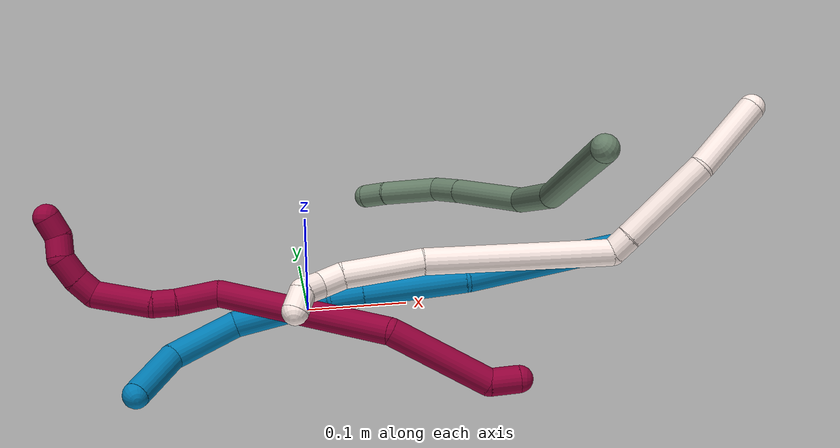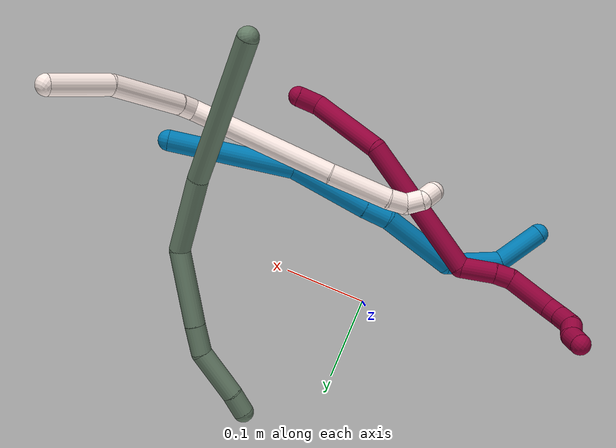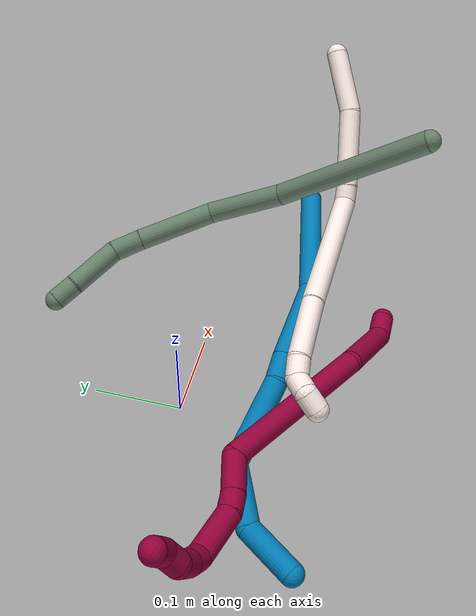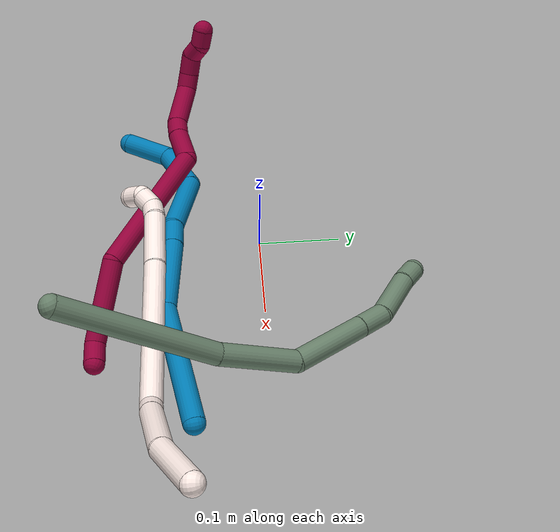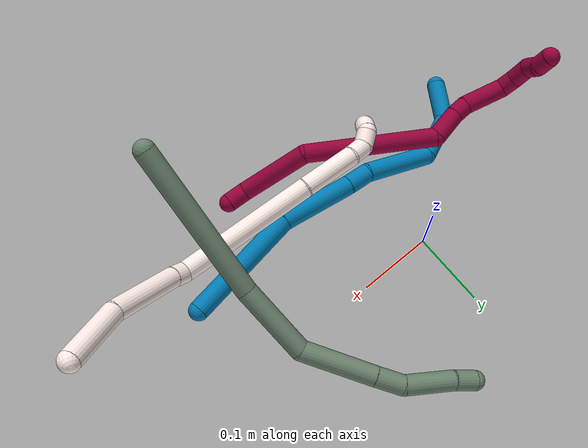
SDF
<sdf version="1.7">
 <world name="default">
  <model name="8">
   <static>0</static>
   <link name="8">
    <collision name="collision-cylinder-e_1_1_4">
     <pose>-0.002606 -0.002024 -0.013104 2.98833 -0.194032 -1.80567</pose>
     <geometry><cylinder><radius>0.0125</radius><length>0.027026</length></cylinder></geometry>
     <surface>
      <friction><ode><mu>1.16</mu><mu2>1.16</mu2><slip1>0</slip1><slip2>0</slip2></ode></friction>
      <contact><ode><kp>1e+06</kp><kd>1</kd><max_vel>0</max_vel><min_depth>0.001</min_depth></ode></contact>
     </surface>
    </collision>
    <visual name="visual-cylinder-e_1_1_4">
     <pose>-0.002606 -0.002024 -0.013104 2.98833 -0.194032 -1.80567</pose>
     <geometry><cylinder><radius>0.0125</radius><length>0.027026</length></cylinder></geometry>
     <material><ambient>0.584314 0 0.227451 1</ambient></material>
    </visual>
    <collision name="collision-cylinder-e_2_4_5">
     <pose>-0.01887 0.016145 -0.069137 -2.70192 -0.280329 1.12641</pose>
     <geometry><cylinder><radius>0.0125</radius><length>0.098736</length></cylinder></geometry>
     <surface>
      <friction><ode><mu>1.16</mu><mu2>1.16</mu2><slip1>0</slip1><slip2>0</slip2></ode></friction>
      <contact><ode><kp>1e+06</kp><kd>1</kd><max_vel>0</max_vel><min_depth>0.001</min_depth></ode></contact>
     </surface>
    </collision>
    <visual name="visual-cylinder-e_2_4_5">
     <pose>-0.01887 0.016145 -0.069137 -2.70192 -0.280329 1.12641</pose>
     <geometry><cylinder><radius>0.0125</radius><length>0.098736</length></cylinder></geometry>
     <material><ambient>0.584314 0 0.227451 1</ambient></material>
    </visual>
    <collision name="collision-cylinder-e_3_5_6">
     <pose>-0.015266 0.055372 -0.194659 -2.91509 0.200917 -1.45032</pose>
     <geometry><cylinder><radius>0.0125</radius><length>0.172996</length></cylinder></geometry>
     <surface>
      <friction><ode><mu>1.16</mu><mu2>1.16</mu2><slip1>0</slip1><slip2>0</slip2></ode></friction>
      <contact><ode><kp>1e+06</kp><kd>1</kd><max_vel>0</max_vel><min_depth>0.001</min_depth></ode></contact>
     </surface>
    </collision>
    <visual name="visual-cylinder-e_3_5_6">
     <pose>-0.015266 0.055372 -0.194659 -2.91509 0.200917 -1.45032</pose>
     <geometry><cylinder><radius>0.0125</radius><length>0.172996</length></cylinder></geometry>
     <material><ambient>0.584314 0 0.227451 1</ambient></material>
    </visual>
    <collision name="collision-cylinder-e_4_6_7">
     <pose>-0.005836 0.068712 -0.295508 2.83929 -0.388707 -1.82449</pose>
     <geometry><cylinder><radius>0.0125</radius><length>0.041329</length></cylinder></geometry>
     <surface>
      <friction><ode><mu>1.16</mu><mu2>1.16</mu2><slip1>0</slip1><slip2>0</slip2></ode></friction>
      <contact><ode><kp>1e+06</kp><kd>1</kd><max_vel>0</max_vel><min_depth>0.001</min_depth></ode></contact>
     </surface>
    </collision>
    <visual name="visual-cylinder-e_4_6_7">
     <pose>-0.005836 0.068712 -0.295508 2.83929 -0.388707 -1.82449</pose>
     <geometry><cylinder><radius>0.0125</radius><length>0.041329</length></cylinder></geometry>
     <material><ambient>0.584314 0 0.227451 1</ambient></material>
    </visual>
    <collision name="collision-cylinder-e_5_7_8">
     <pose>-0.016621 0.061529 -0.323551 2.99046 -0.289879 -2.18461</pose>
     <geometry><cylinder><radius>0.0125</radius><length>0.020662</length></cylinder></geometry>
     <surface>
      <friction><ode><mu>1.16</mu><mu2>1.16</mu2><slip1>0</slip1><slip2>0</slip2></ode></friction>
      <contact><ode><kp>1e+06</kp><kd>1</kd><max_vel>0</max_vel><min_depth>0.001</min_depth></ode></contact>
     </surface>
    </collision>
    <visual name="visual-cylinder-e_5_7_8">
     <pose>-0.016621 0.061529 -0.323551 2.99046 -0.289879 -2.18461</pose>
     <geometry><cylinder><radius>0.0125</radius><length>0.020662</length></cylinder></geometry>
     <material><ambient>0.584314 0 0.227451 1</ambient></material>
    </visual>
    <collision name="collision-cylinder-e_6_8_9">
     <pose>-0.022302 0.06396 -0.360054 -2.99584 -0.100725 1.20854</pose>
     <geometry><cylinder><radius>0.0125</radius><length>0.054279</length></cylinder></geometry>
     <surface>
      <friction><ode><mu>1.16</mu><mu2>1.16</mu2><slip1>0</slip1><slip2>0</slip2></ode></friction>
      <contact><ode><kp>1e+06</kp><kd>1</kd><max_vel>0</max_vel><min_depth>0.001</min_depth></ode></contact>
     </surface>
    </collision>
    <visual name="visual-cylinder-e_6_8_9">
     <pose>-0.022302 0.06396 -0.360054 -2.99584 -0.100725 1.20854</pose>
     <geometry><cylinder><radius>0.0125</radius><length>0.054279</length></cylinder></geometry>
     <material><ambient>0.584314 0 0.227451 1</ambient></material>
    </visual>
    <collision name="collision-cylinder-e_7_9_10">
     <pose>-0.029163 0.073879 -0.393966 -2.44689 -0.415332 1.05416</pose>
     <geometry><cylinder><radius>0.0125</radius><length>0.020479</length></cylinder></geometry>
     <surface>
      <friction><ode><mu>1.16</mu><mu2>1.16</mu2><slip1>0</slip1><slip2>0</slip2></ode></friction>
      <contact><ode><kp>1e+06</kp><kd>1</kd><max_vel>0</max_vel><min_depth>0.001</min_depth></ode></contact>
     </surface>
    </collision>
    <visual name="visual-cylinder-e_7_9_10">
     <pose>-0.029163 0.073879 -0.393966 -2.44689 -0.415332 1.05416</pose>
     <geometry><cylinder><radius>0.0125</radius><length>0.020479</length></cylinder></geometry>
     <material><ambient>0.584314 0 0.227451 1</ambient></material>
    </visual>
    <collision name="collision-cylinder-e_8_10_11">
     <pose>-0.038824 0.088526 -0.407378 -2.19377 -0.478851 0.888427</pose>
     <geometry><cylinder><radius>0.0125</radius><length>0.024</length></cylinder></geometry>
     <surface>
      <friction><ode><mu>1.16</mu><mu2>1.16</mu2><slip1>0</slip1><slip2>0</slip2></ode></friction>
      <contact><ode><kp>1e+06</kp><kd>1</kd><max_vel>0</max_vel><min_depth>0.001</min_depth></ode></contact>
     </surface>
    </collision>
    <visual name="visual-cylinder-e_8_10_11">
     <pose>-0.038824 0.088526 -0.407378 -2.19377 -0.478851 0.888427</pose>
     <geometry><cylinder><radius>0.0125</radius><length>0.024</length></cylinder></geometry>
     <material><ambient>0.584314 0 0.227451 1</ambient></material>
    </visual>
    <collision name="collision-cylinder-e_9_11_12">
     <pose>-0.044987 0.107203 -0.415182 -1.72803 -0.062421 0.073088</pose>
     <geometry><cylinder><radius>0.0125</radius><length>0.020343</length></cylinder></geometry>
     <surface>
      <friction><ode><mu>1.16</mu><mu2>1.16</mu2><slip1>0</slip1><slip2>0</slip2></ode></friction>
      <contact><ode><kp>1e+06</kp><kd>1</kd><max_vel>0</max_vel><min_depth>0.001</min_depth></ode></contact>
     </surface>
    </collision>
    <visual name="visual-cylinder-e_9_11_12">
     <pose>-0.044987 0.107203 -0.415182 -1.72803 -0.062421 0.073088</pose>
     <geometry><cylinder><radius>0.0125</radius><length>0.020343</length></cylinder></geometry>
     <material><ambient>0.584314 0 0.227451 1</ambient></material>
    </visual>
    <collision name="collision-cylinder-e_10_12_2">
     <pose>-0.050067 0.125021 -0.421358 -2.10286 -0.45695 0.772585</pose>
     <geometry><cylinder><radius>0.0125</radius><length>0.02015</length></cylinder></geometry>
     <surface>
      <friction><ode><mu>1.16</mu><mu2>1.16</mu2><slip1>0</slip1><slip2>0</slip2></ode></friction>
      <contact><ode><kp>1e+06</kp><kd>1</kd><max_vel>0</max_vel><min_depth>0.001</min_depth></ode></contact>
     </surface>
    </collision>
    <visual name="visual-cylinder-e_10_12_2">
     <pose>-0.050067 0.125021 -0.421358 -2.10286 -0.45695 0.772585</pose>
     <geometry><cylinder><radius>0.0125</radius><length>0.02015</length></cylinder></geometry>
     <material><ambient>0.584314 0 0.227451 1</ambient></material>
    </visual>
    <collision name="collision-sphere-2">
     <pose>-0.054512 0.132812 -0.425945 0 -0 0</pose>
     <geometry><sphere><radius>0.0125</radius></sphere></geometry>
     <surface>
      <friction><ode><mu>1.16</mu><mu2>1.16</mu2><slip1>0</slip1><slip2>0</slip2></ode></friction>
      <contact><ode><kp>1e+06</kp><kd>1</kd><max_vel>0</max_vel><min_depth>0.001</min_depth></ode></contact>
     </surface>
    </collision>
    <visual name="visual-sphere-2">
     <pose>-0.054512 0.132812 -0.425945 0 -0 0</pose>
     <geometry><sphere><radius>0.0125</radius></sphere></geometry>
     <material><ambient>0.584314 0 0.227451 1</ambient></material>
    </visual>
    <collision name="collision-sphere-12">
     <pose>-0.045622 0.117229 -0.416771 0 -0 0</pose>
     <geometry><sphere><radius>0.0125</radius></sphere></geometry>
     <surface>
      <friction><ode><mu>1.16</mu><mu2>1.16</mu2><slip1>0</slip1><slip2>0</slip2></ode></friction>
      <contact><ode><kp>1e+06</kp><kd>1</kd><max_vel>0</max_vel><min_depth>0.001</min_depth></ode></contact>
     </surface>
    </collision>
    <visual name="visual-sphere-12">
     <pose>-0.045622 0.117229 -0.416771 0 -0 0</pose>
     <geometry><sphere><radius>0.0125</radius></sphere></geometry>
     <material><ambient>0.584314 0 0.227451 1</ambient></material>
    </visual>
    <collision name="collision-sphere-11">
     <pose>-0.044353 0.097176 -0.413592 0 -0 0</pose>
     <geometry><sphere><radius>0.0125</radius></sphere></geometry>
     <surface>
      <friction><ode><mu>1.16</mu><mu2>1.16</mu2><slip1>0</slip1><slip2>0</slip2></ode></friction>
      <contact><ode><kp>1e+06</kp><kd>1</kd><max_vel>0</max_vel><min_depth>0.001</min_depth></ode></contact>
     </surface>
    </collision>
    <visual name="visual-sphere-11">
     <pose>-0.044353 0.097176 -0.413592 0 -0 0</pose>
     <geometry><sphere><radius>0.0125</radius></sphere></geometry>
     <material><ambient>0.584314 0 0.227451 1</ambient></material>
    </visual>
    <collision name="collision-sphere-10">
     <pose>-0.033294 0.079876 -0.401164 0 -0 0</pose>
     <geometry><sphere><radius>0.0125</radius></sphere></geometry>
     <surface>
      <friction><ode><mu>1.16</mu><mu2>1.16</mu2><slip1>0</slip1><slip2>0</slip2></ode></friction>
      <contact><ode><kp>1e+06</kp><kd>1</kd><max_vel>0</max_vel><min_depth>0.001</min_depth></ode></contact>
     </surface>
    </collision>
    <visual name="visual-sphere-10">
     <pose>-0.033294 0.079876 -0.401164 0 -0 0</pose>
     <geometry><sphere><radius>0.0125</radius></sphere></geometry>
     <material><ambient>0.584314 0 0.227451 1</ambient></material>
    </visual>
    <collision name="collision-sphere-9">
     <pose>-0.025031 0.067881 -0.386769 0 -0 0</pose>
     <geometry><sphere><radius>0.0125</radius></sphere></geometry>
     <surface>
      <friction><ode><mu>1.16</mu><mu2>1.16</mu2><slip1>0</slip1><slip2>0</slip2></ode></friction>
      <contact><ode><kp>1e+06</kp><kd>1</kd><max_vel>0</max_vel><min_depth>0.001</min_depth></ode></contact>
     </surface>
    </collision>
    <visual name="visual-sphere-9">
     <pose>-0.025031 0.067881 -0.386769 0 -0 0</pose>
     <geometry><sphere><radius>0.0125</radius></sphere></geometry>
     <material><ambient>0.584314 0 0.227451 1</ambient></material>
    </visual>
    <collision name="collision-sphere-4">
     <pose>-0.005211 -0.004048 -0.026208 0 -0 0</pose>
     <geometry><sphere><radius>0.0125</radius></sphere></geometry>
     <surface>
      <friction><ode><mu>1.16</mu><mu2>1.16</mu2><slip1>0</slip1><slip2>0</slip2></ode></friction>
      <contact><ode><kp>1e+06</kp><kd>1</kd><max_vel>0</max_vel><min_depth>0.001</min_depth></ode></contact>
     </surface>
    </collision>
    <visual name="visual-sphere-4">
     <pose>-0.005211 -0.004048 -0.026208 0 -0 0</pose>
     <geometry><sphere><radius>0.0125</radius></sphere></geometry>
     <material><ambient>0.584314 0 0.227451 1</ambient></material>
    </visual>
    <collision name="collision-sphere-1">
     <geometry><sphere><radius>0.0125</radius></sphere></geometry>
     <surface>
      <friction><ode><mu>1.16</mu><mu2>1.16</mu2><slip1>0</slip1><slip2>0</slip2></ode></friction>
      <contact><ode><kp>1e+06</kp><kd>1</kd><max_vel>0</max_vel><min_depth>0.001</min_depth></ode></contact>
     </surface>
    </collision>
    <visual name="visual-sphere-1">
     <geometry><sphere><radius>0.0125</radius></sphere></geometry>
     <material><ambient>0.584314 0 0.227451 1</ambient></material>
    </visual>
    <collision name="collision-sphere-8">
     <pose>-0.019573 0.060038 -0.333338 0 -0 0</pose>
     <geometry><sphere><radius>0.0125</radius></sphere></geometry>
     <surface>
      <friction><ode><mu>1.16</mu><mu2>1.16</mu2><slip1>0</slip1><slip2>0</slip2></ode></friction>
      <contact><ode><kp>1e+06</kp><kd>1</kd><max_vel>0</max_vel><min_depth>0.001</min_depth></ode></contact>
     </surface>
    </collision>
    <visual name="visual-sphere-8">
     <pose>-0.019573 0.060038 -0.333338 0 -0 0</pose>
     <geometry><sphere><radius>0.0125</radius></sphere></geometry>
     <material><ambient>0.584314 0 0.227451 1</ambient></material>
    </visual>
    <collision name="collision-sphere-5">
     <pose>-0.032529 0.036338 -0.112066 0 -0 0</pose>
     <geometry><sphere><radius>0.0125</radius></sphere></geometry>
     <surface>
      <friction><ode><mu>1.16</mu><mu2>1.16</mu2><slip1>0</slip1><slip2>0</slip2></ode></friction>
      <contact><ode><kp>1e+06</kp><kd>1</kd><max_vel>0</max_vel><min_depth>0.001</min_depth></ode></contact>
     </surface>
    </collision>
    <visual name="visual-sphere-5">
     <pose>-0.032529 0.036338 -0.112066 0 -0 0</pose>
     <geometry><sphere><radius>0.0125</radius></sphere></geometry>
     <material><ambient>0.584314 0 0.227451 1</ambient></material>
    </visual>
    <collision name="collision-sphere-6">
     <pose>0.001996 0.074406 -0.277252 0 -0 0</pose>
     <geometry><sphere><radius>0.0125</radius></sphere></geometry>
     <surface>
      <friction><ode><mu>1.16</mu><mu2>1.16</mu2><slip1>0</slip1><slip2>0</slip2></ode></friction>
      <contact><ode><kp>1e+06</kp><kd>1</kd><max_vel>0</max_vel><min_depth>0.001</min_depth></ode></contact>
     </surface>
    </collision>
    <visual name="visual-sphere-6">
     <pose>0.001996 0.074406 -0.277252 0 -0 0</pose>
     <geometry><sphere><radius>0.0125</radius></sphere></geometry>
     <material><ambient>0.584314 0 0.227451 1</ambient></material>
    </visual>
    <collision name="collision-sphere-7">
     <pose>-0.013668 0.063019 -0.313764 0 -0 0</pose>
     <geometry><sphere><radius>0.0125</radius></sphere></geometry>
     <surface>
      <friction><ode><mu>1.16</mu><mu2>1.16</mu2><slip1>0</slip1><slip2>0</slip2></ode></friction>
      <contact><ode><kp>1e+06</kp><kd>1</kd><max_vel>0</max_vel><min_depth>0.001</min_depth></ode></contact>
     </surface>
    </collision>
    <visual name="visual-sphere-7">
     <pose>-0.013668 0.063019 -0.313764 0 -0 0</pose>
     <geometry><sphere><radius>0.0125</radius></sphere></geometry>
     <material><ambient>0.584314 0 0.227451 1</ambient></material>
    </visual>
    <inertial>
     <pose>-0.019645 0.054078 -0.228157 0 -0 0</pose>
     <mass>0.5</mass>
     <inertia>
      <ixx>-0.000257</ixx>
      <ixy>0</ixy>
      <ixz>0</ixz>
      <iyy>-0.000393</iyy>
      <iyz>0</iyz>
      <izz>-0.000225</izz>
     </inertia>
    </inertial>
   </link>
   <pose>0.169976 -0.20142 0.021488 1.5175 0.639215 1.27727</pose>
  </model>
  <model name="9">
   <static>0</static>
   <link name="9">
    <collision name="collision-cylinder-e_1_1_4">
     <pose>0.034766 -0.066396 -0.003242 1.61959 0.481877 0.504991</pose>
     <geometry><cylinder><radius>0.0125</radius><length>0.150035</length></cylinder></geometry>
     <surface>
      <friction><ode><mu>1.16</mu><mu2>1.16</mu2><slip1>0</slip1><slip2>0</slip2></ode></friction>
      <contact><ode><kp>1e+06</kp><kd>1</kd><max_vel>0</max_vel><min_depth>0.001</min_depth></ode></contact>
     </surface>
    </collision>
    <visual name="visual-cylinder-e_1_1_4">
     <pose>0.034766 -0.066396 -0.003242 1.61959 0.481877 0.504991</pose>
     <geometry><cylinder><radius>0.0125</radius><length>0.150035</length></cylinder></geometry>
     <material><ambient>0 0.490196 0.709804 1</ambient></material>
    </visual>
    <collision name="collision-cylinder-e_2_4_5">
     <pose>0.088034 -0.175674 0.004947 1.3103 0.39499 0.305113</pose>
     <geometry><cylinder><radius>0.0125</radius><length>0.096164</length></cylinder></geometry>
     <surface>
      <friction><ode><mu>1.16</mu><mu2>1.16</mu2><slip1>0</slip1><slip2>0</slip2></ode></friction>
      <contact><ode><kp>1e+06</kp><kd>1</kd><max_vel>0</max_vel><min_depth>0.001</min_depth></ode></contact>
     </surface>
    </collision>
    <visual name="visual-cylinder-e_2_4_5">
     <pose>0.088034 -0.175674 0.004947 1.3103 0.39499 0.305113</pose>
     <geometry><cylinder><radius>0.0125</radius><length>0.096164</length></cylinder></geometry>
     <material><ambient>0 0.490196 0.709804 1</ambient></material>
    </visual>
    <collision name="collision-cylinder-e_3_5_6">
     <pose>0.11275 -0.232468 0.019108 1.37695 0.413048 0.341404</pose>
     <geometry><cylinder><radius>0.0125</radius><length>0.030959</length></cylinder></geometry>
     <surface>
      <friction><ode><mu>1.16</mu><mu2>1.16</mu2><slip1>0</slip1><slip2>0</slip2></ode></friction>
      <contact><ode><kp>1e+06</kp><kd>1</kd><max_vel>0</max_vel><min_depth>0.001</min_depth></ode></contact>
     </surface>
    </collision>
    <visual name="visual-cylinder-e_3_5_6">
     <pose>0.11275 -0.232468 0.019108 1.37695 0.413048 0.341404</pose>
     <geometry><cylinder><radius>0.0125</radius><length>0.030959</length></cylinder></geometry>
     <material><ambient>0 0.490196 0.709804 1</ambient></material>
    </visual>
    <collision name="collision-cylinder-e_4_6_7">
     <pose>0.127059 -0.290352 0.038441 1.2098 0.170573 0.118076</pose>
     <geometry><cylinder><radius>0.0125</radius><length>0.095387</length></cylinder></geometry>
     <surface>
      <friction><ode><mu>1.16</mu><mu2>1.16</mu2><slip1>0</slip1><slip2>0</slip2></ode></friction>
      <contact><ode><kp>1e+06</kp><kd>1</kd><max_vel>0</max_vel><min_depth>0.001</min_depth></ode></contact>
     </surface>
    </collision>
    <visual name="visual-cylinder-e_4_6_7">
     <pose>0.127059 -0.290352 0.038441 1.2098 0.170573 0.118076</pose>
     <geometry><cylinder><radius>0.0125</radius><length>0.095387</length></cylinder></geometry>
     <material><ambient>0 0.490196 0.709804 1</ambient></material>
    </visual>
    <collision name="collision-cylinder-e_5_7_8">
     <pose>0.145569 -0.364845 0.045378 1.87744 0.314491 0.426449</pose>
     <geometry><cylinder><radius>0.0125</radius><length>0.067332</length></cylinder></geometry>
     <surface>
      <friction><ode><mu>1.16</mu><mu2>1.16</mu2><slip1>0</slip1><slip2>0</slip2></ode></friction>
      <contact><ode><kp>1e+06</kp><kd>1</kd><max_vel>0</max_vel><min_depth>0.001</min_depth></ode></contact>
     </surface>
    </collision>
    <visual name="visual-cylinder-e_5_7_8">
     <pose>0.145569 -0.364845 0.045378 1.87744 0.314491 0.426449</pose>
     <geometry><cylinder><radius>0.0125</radius><length>0.067332</length></cylinder></geometry>
     <material><ambient>0 0.490196 0.709804 1</ambient></material>
    </visual>
    <collision name="collision-cylinder-e_6_8_2">
     <pose>0.163351 -0.413499 0.012896 2.47011 0.24764 0.685184</pose>
     <geometry><cylinder><radius>0.0125</radius><length>0.060124</length></cylinder></geometry>
     <surface>
      <friction><ode><mu>1.16</mu><mu2>1.16</mu2><slip1>0</slip1><slip2>0</slip2></ode></friction>
      <contact><ode><kp>1e+06</kp><kd>1</kd><max_vel>0</max_vel><min_depth>0.001</min_depth></ode></contact>
     </surface>
    </collision>
    <visual name="visual-cylinder-e_6_8_2">
     <pose>0.163351 -0.413499 0.012896 2.47011 0.24764 0.685184</pose>
     <geometry><cylinder><radius>0.0125</radius><length>0.060124</length></cylinder></geometry>
     <material><ambient>0 0.490196 0.709804 1</ambient></material>
    </visual>
    <collision name="collision-sphere-2">
     <pose>0.17072 -0.431632 -0.009921 0 -0 0</pose>
     <geometry><sphere><radius>0.0125</radius></sphere></geometry>
     <surface>
      <friction><ode><mu>1.16</mu><mu2>1.16</mu2><slip1>0</slip1><slip2>0</slip2></ode></friction>
      <contact><ode><kp>1e+06</kp><kd>1</kd><max_vel>0</max_vel><min_depth>0.001</min_depth></ode></contact>
     </surface>
    </collision>
    <visual name="visual-sphere-2">
     <pose>0.17072 -0.431632 -0.009921 0 -0 0</pose>
     <geometry><sphere><radius>0.0125</radius></sphere></geometry>
     <material><ambient>0 0.490196 0.709804 1</ambient></material>
    </visual>
    <collision name="collision-sphere-4">
     <pose>0.069533 -0.132792 -0.006484 0 -0 0</pose>
     <geometry><sphere><radius>0.0125</radius></sphere></geometry>
     <surface>
      <friction><ode><mu>1.16</mu><mu2>1.16</mu2><slip1>0</slip1><slip2>0</slip2></ode></friction>
      <contact><ode><kp>1e+06</kp><kd>1</kd><max_vel>0</max_vel><min_depth>0.001</min_depth></ode></contact>
     </surface>
    </collision>
    <visual name="visual-sphere-4">
     <pose>0.069533 -0.132792 -0.006484 0 -0 0</pose>
     <geometry><sphere><radius>0.0125</radius></sphere></geometry>
     <material><ambient>0 0.490196 0.709804 1</ambient></material>
    </visual>
    <collision name="collision-sphere-1">
     <geometry><sphere><radius>0.0125</radius></sphere></geometry>
     <surface>
      <friction><ode><mu>1.16</mu><mu2>1.16</mu2><slip1>0</slip1><slip2>0</slip2></ode></friction>
      <contact><ode><kp>1e+06</kp><kd>1</kd><max_vel>0</max_vel><min_depth>0.001</min_depth></ode></contact>
     </surface>
    </collision>
    <visual name="visual-sphere-1">
     <geometry><sphere><radius>0.0125</radius></sphere></geometry>
     <material><ambient>0 0.490196 0.709804 1</ambient></material>
    </visual>
    <collision name="collision-sphere-8">
     <pose>0.155983 -0.395367 0.035714 0 -0 0</pose>
     <geometry><sphere><radius>0.0125</radius></sphere></geometry>
     <surface>
      <friction><ode><mu>1.16</mu><mu2>1.16</mu2><slip1>0</slip1><slip2>0</slip2></ode></friction>
      <contact><ode><kp>1e+06</kp><kd>1</kd><max_vel>0</max_vel><min_depth>0.001</min_depth></ode></contact>
     </surface>
    </collision>
    <visual name="visual-sphere-8">
     <pose>0.155983 -0.395367 0.035714 0 -0 0</pose>
     <geometry><sphere><radius>0.0125</radius></sphere></geometry>
     <material><ambient>0 0.490196 0.709804 1</ambient></material>
    </visual>
    <collision name="collision-sphere-5">
     <pose>0.106536 -0.218556 0.016377 0 -0 0</pose>
     <geometry><sphere><radius>0.0125</radius></sphere></geometry>
     <surface>
      <friction><ode><mu>1.16</mu><mu2>1.16</mu2><slip1>0</slip1><slip2>0</slip2></ode></friction>
      <contact><ode><kp>1e+06</kp><kd>1</kd><max_vel>0</max_vel><min_depth>0.001</min_depth></ode></contact>
     </surface>
    </collision>
    <visual name="visual-sphere-5">
     <pose>0.106536 -0.218556 0.016377 0 -0 0</pose>
     <geometry><sphere><radius>0.0125</radius></sphere></geometry>
     <material><ambient>0 0.490196 0.709804 1</ambient></material>
    </visual>
    <collision name="collision-sphere-6">
     <pose>0.118963 -0.24638 0.02184 0 -0 0</pose>
     <geometry><sphere><radius>0.0125</radius></sphere></geometry>
     <surface>
      <friction><ode><mu>1.16</mu><mu2>1.16</mu2><slip1>0</slip1><slip2>0</slip2></ode></friction>
      <contact><ode><kp>1e+06</kp><kd>1</kd><max_vel>0</max_vel><min_depth>0.001</min_depth></ode></contact>
     </surface>
    </collision>
    <visual name="visual-sphere-6">
     <pose>0.118963 -0.24638 0.02184 0 -0 0</pose>
     <geometry><sphere><radius>0.0125</radius></sphere></geometry>
     <material><ambient>0 0.490196 0.709804 1</ambient></material>
    </visual>
    <collision name="collision-sphere-7">
     <pose>0.135155 -0.334324 0.055042 0 -0 0</pose>
     <geometry><sphere><radius>0.0125</radius></sphere></geometry>
     <surface>
      <friction><ode><mu>1.16</mu><mu2>1.16</mu2><slip1>0</slip1><slip2>0</slip2></ode></friction>
      <contact><ode><kp>1e+06</kp><kd>1</kd><max_vel>0</max_vel><min_depth>0.001</min_depth></ode></contact>
     </surface>
    </collision>
    <visual name="visual-sphere-7">
     <pose>0.135155 -0.334324 0.055042 0 -0 0</pose>
     <geometry><sphere><radius>0.0125</radius></sphere></geometry>
     <material><ambient>0 0.490196 0.709804 1</ambient></material>
    </visual>
    <inertial>
     <pose>0.09783 -0.22235 0.016157 0 -0 0</pose>
     <mass>0.5</mass>
     <inertia><ixx>0.0006</ixx><ixy>0</ixy><ixz>0</ixz><iyy>0.000239</iyy><iyz>0</iyz><izz>0.000243</izz></inertia>
    </inertial>
   </link>
   <pose>0.285894 -0.08865 0.090029 1.53023 -1.02572 -2.96741</pose>
  </model>
  <model name="11">
   <static>0</static>
   <link name="11">
    <collision name="collision-cylinder-e_1_1_4">
     <pose>-0.02709 0.008846 -0.025107 -2.80285 -0.794155 2.36718</pose>
     <geometry><cylinder><radius>0.0125</radius><length>0.075959</length></cylinder></geometry>
     <surface>
      <friction><ode><mu>1.16</mu><mu2>1.16</mu2><slip1>0</slip1><slip2>0</slip2></ode></friction>
      <contact><ode><kp>1e+06</kp><kd>1</kd><max_vel>0</max_vel><min_depth>0.001</min_depth></ode></contact>
     </surface>
    </collision>
    <visual name="visual-cylinder-e_1_1_4">
     <pose>-0.02709 0.008846 -0.025107 -2.80285 -0.794155 2.36718</pose>
     <geometry><cylinder><radius>0.0125</radius><length>0.075959</length></cylinder></geometry>
     <material><ambient>1 0.933333 0.909804 1</ambient></material>
    </visual>
    <collision name="collision-cylinder-e_2_4_5">
     <pose>-0.091235 0.034413 -0.071412 -2.47372 -0.941106 1.94445</pose>
     <geometry><cylinder><radius>0.0125</radius><length>0.091698</length></cylinder></geometry>
     <surface>
      <friction><ode><mu>1.16</mu><mu2>1.16</mu2><slip1>0</slip1><slip2>0</slip2></ode></friction>
      <contact><ode><kp>1e+06</kp><kd>1</kd><max_vel>0</max_vel><min_depth>0.001</min_depth></ode></contact>
     </surface>
    </collision>
    <visual name="visual-cylinder-e_2_4_5">
     <pose>-0.091235 0.034413 -0.071412 -2.47372 -0.941106 1.94445</pose>
     <geometry><cylinder><radius>0.0125</radius><length>0.091698</length></cylinder></geometry>
     <material><ambient>1 0.933333 0.909804 1</ambient></material>
    </visual>
    <collision name="collision-cylinder-e_3_5_6">
     <pose>-0.136678 0.055434 -0.096614 -2.32048 -0.959831 1.74863</pose>
     <geometry><cylinder><radius>0.0125</radius><length>0.02048</length></cylinder></geometry>
     <surface>
      <friction><ode><mu>1.16</mu><mu2>1.16</mu2><slip1>0</slip1><slip2>0</slip2></ode></friction>
      <contact><ode><kp>1e+06</kp><kd>1</kd><max_vel>0</max_vel><min_depth>0.001</min_depth></ode></contact>
     </surface>
    </collision>
    <visual name="visual-cylinder-e_3_5_6">
     <pose>-0.136678 0.055434 -0.096614 -2.32048 -0.959831 1.74863</pose>
     <geometry><cylinder><radius>0.0125</radius><length>0.02048</length></cylinder></geometry>
     <material><ambient>1 0.933333 0.909804 1</ambient></material>
    </visual>
    <collision name="collision-cylinder-e_4_6_7">
     <pose>-0.229016 0.037483 -0.111055 2.00943 -1.28599 -1.73475</pose>
     <geometry><cylinder><radius>0.0125</radius><length>0.174948</length></cylinder></geometry>
     <surface>
      <friction><ode><mu>1.16</mu><mu2>1.16</mu2><slip1>0</slip1><slip2>0</slip2></ode></friction>
      <contact><ode><kp>1e+06</kp><kd>1</kd><max_vel>0</max_vel><min_depth>0.001</min_depth></ode></contact>
     </surface>
    </collision>
    <visual name="visual-cylinder-e_4_6_7">
     <pose>-0.229016 0.037483 -0.111055 2.00943 -1.28599 -1.73475</pose>
     <geometry><cylinder><radius>0.0125</radius><length>0.174948</length></cylinder></geometry>
     <material><ambient>1 0.933333 0.909804 1</ambient></material>
    </visual>
    <collision name="collision-cylinder-e_5_7_8">
     <pose>-0.348613 0.009558 -0.128437 2.4565 -1.32436 -2.28358</pose>
     <geometry><cylinder><radius>0.0125</radius><length>0.073514</length></cylinder></geometry>
     <surface>
      <friction><ode><mu>1.16</mu><mu2>1.16</mu2><slip1>0</slip1><slip2>0</slip2></ode></friction>
      <contact><ode><kp>1e+06</kp><kd>1</kd><max_vel>0</max_vel><min_depth>0.001</min_depth></ode></contact>
     </surface>
    </collision>
    <visual name="visual-cylinder-e_5_7_8">
     <pose>-0.348613 0.009558 -0.128437 2.4565 -1.32436 -2.28358</pose>
     <geometry><cylinder><radius>0.0125</radius><length>0.073514</length></cylinder></geometry>
     <material><ambient>1 0.933333 0.909804 1</ambient></material>
    </visual>
    <collision name="collision-cylinder-e_6_8_9">
     <pose>-0.394894 0.003731 -0.139465 3.10392 -1.20382 -3.08676</pose>
     <geometry><cylinder><radius>0.0125</radius><length>0.022785</length></cylinder></geometry>
     <surface>
      <friction><ode><mu>1.16</mu><mu2>1.16</mu2><slip1>0</slip1><slip2>0</slip2></ode></friction>
      <contact><ode><kp>1e+06</kp><kd>1</kd><max_vel>0</max_vel><min_depth>0.001</min_depth></ode></contact>
     </surface>
    </collision>
    <visual name="visual-cylinder-e_6_8_9">
     <pose>-0.394894 0.003731 -0.139465 3.10392 -1.20382 -3.08676</pose>
     <geometry><cylinder><radius>0.0125</radius><length>0.022785</length></cylinder></geometry>
     <material><ambient>1 0.933333 0.909804 1</ambient></material>
    </visual>
    <collision name="collision-cylinder-e_7_9_10">
     <pose>-0.41173 -0.000879 -0.150345 2.56118 -0.651965 -1.69442</pose>
     <geometry><cylinder><radius>0.0125</radius><length>0.020446</length></cylinder></geometry>
     <surface>
      <friction><ode><mu>1.16</mu><mu2>1.16</mu2><slip1>0</slip1><slip2>0</slip2></ode></friction>
      <contact><ode><kp>1e+06</kp><kd>1</kd><max_vel>0</max_vel><min_depth>0.001</min_depth></ode></contact>
     </surface>
    </collision>
    <visual name="visual-cylinder-e_7_9_10">
     <pose>-0.41173 -0.000879 -0.150345 2.56118 -0.651965 -1.69442</pose>
     <geometry><cylinder><radius>0.0125</radius><length>0.020446</length></cylinder></geometry>
     <material><ambient>1 0.933333 0.909804 1</ambient></material>
    </visual>
    <collision name="collision-cylinder-e_8_10_2">
     <pose>-0.421498 -0.002857 -0.166242 -2.87575 -0.361362 1.87788</pose>
     <geometry><cylinder><radius>0.0125</radius><length>0.02017</length></cylinder></geometry>
     <surface>
      <friction><ode><mu>1.16</mu><mu2>1.16</mu2><slip1>0</slip1><slip2>0</slip2></ode></friction>
      <contact><ode><kp>1e+06</kp><kd>1</kd><max_vel>0</max_vel><min_depth>0.001</min_depth></ode></contact>
     </surface>
    </collision>
    <visual name="visual-cylinder-e_8_10_2">
     <pose>-0.421498 -0.002857 -0.166242 -2.87575 -0.361362 1.87788</pose>
     <geometry><cylinder><radius>0.0125</radius><length>0.02017</length></cylinder></geometry>
     <material><ambient>1 0.933333 0.909804 1</ambient></material>
    </visual>
    <collision name="collision-sphere-2">
     <pose>-0.425064 -0.000378 -0.175345 0 -0 0</pose>
     <geometry><sphere><radius>0.0125</radius></sphere></geometry>
     <surface>
      <friction><ode><mu>1.16</mu><mu2>1.16</mu2><slip1>0</slip1><slip2>0</slip2></ode></friction>
      <contact><ode><kp>1e+06</kp><kd>1</kd><max_vel>0</max_vel><min_depth>0.001</min_depth></ode></contact>
     </surface>
    </collision>
    <visual name="visual-sphere-2">
     <pose>-0.425064 -0.000378 -0.175345 0 -0 0</pose>
     <geometry><sphere><radius>0.0125</radius></sphere></geometry>
     <material><ambient>1 0.933333 0.909804 1</ambient></material>
    </visual>
    <collision name="collision-sphere-10">
     <pose>-0.417933 -0.005335 -0.15714 0 -0 0</pose>
     <geometry><sphere><radius>0.0125</radius></sphere></geometry>
     <surface>
      <friction><ode><mu>1.16</mu><mu2>1.16</mu2><slip1>0</slip1><slip2>0</slip2></ode></friction>
      <contact><ode><kp>1e+06</kp><kd>1</kd><max_vel>0</max_vel><min_depth>0.001</min_depth></ode></contact>
     </surface>
    </collision>
    <visual name="visual-sphere-10">
     <pose>-0.417933 -0.005335 -0.15714 0 -0 0</pose>
     <geometry><sphere><radius>0.0125</radius></sphere></geometry>
     <material><ambient>1 0.933333 0.909804 1</ambient></material>
    </visual>
    <collision name="collision-sphere-9">
     <pose>-0.405528 0.003577 -0.14355 0 -0 0</pose>
     <geometry><sphere><radius>0.0125</radius></sphere></geometry>
     <surface>
      <friction><ode><mu>1.16</mu><mu2>1.16</mu2><slip1>0</slip1><slip2>0</slip2></ode></friction>
      <contact><ode><kp>1e+06</kp><kd>1</kd><max_vel>0</max_vel><min_depth>0.001</min_depth></ode></contact>
     </surface>
    </collision>
    <visual name="visual-sphere-9">
     <pose>-0.405528 0.003577 -0.14355 0 -0 0</pose>
     <geometry><sphere><radius>0.0125</radius></sphere></geometry>
     <material><ambient>1 0.933333 0.909804 1</ambient></material>
    </visual>
    <collision name="collision-sphere-4">
     <pose>-0.054179 0.017691 -0.050213 0 -0 0</pose>
     <geometry><sphere><radius>0.0125</radius></sphere></geometry>
     <surface>
      <friction><ode><mu>1.16</mu><mu2>1.16</mu2><slip1>0</slip1><slip2>0</slip2></ode></friction>
      <contact><ode><kp>1e+06</kp><kd>1</kd><max_vel>0</max_vel><min_depth>0.001</min_depth></ode></contact>
     </surface>
    </collision>
    <visual name="visual-sphere-4">
     <pose>-0.054179 0.017691 -0.050213 0 -0 0</pose>
     <geometry><sphere><radius>0.0125</radius></sphere></geometry>
     <material><ambient>1 0.933333 0.909804 1</ambient></material>
    </visual>
    <collision name="collision-sphere-1">
     <geometry><sphere><radius>0.0125</radius></sphere></geometry>
     <surface>
      <friction><ode><mu>1.16</mu><mu2>1.16</mu2><slip1>0</slip1><slip2>0</slip2></ode></friction>
      <contact><ode><kp>1e+06</kp><kd>1</kd><max_vel>0</max_vel><min_depth>0.001</min_depth></ode></contact>
     </surface>
    </collision>
    <visual name="visual-sphere-1">
     <geometry><sphere><radius>0.0125</radius></sphere></geometry>
     <material><ambient>1 0.933333 0.909804 1</ambient></material>
    </visual>
    <collision name="collision-sphere-8">
     <pose>-0.38426 0.003885 -0.13538 0 -0 0</pose>
     <geometry><sphere><radius>0.0125</radius></sphere></geometry>
     <surface>
      <friction><ode><mu>1.16</mu><mu2>1.16</mu2><slip1>0</slip1><slip2>0</slip2></ode></friction>
      <contact><ode><kp>1e+06</kp><kd>1</kd><max_vel>0</max_vel><min_depth>0.001</min_depth></ode></contact>
     </surface>
    </collision>
    <visual name="visual-sphere-8">
     <pose>-0.38426 0.003885 -0.13538 0 -0 0</pose>
     <geometry><sphere><radius>0.0125</radius></sphere></geometry>
     <material><ambient>1 0.933333 0.909804 1</ambient></material>
    </visual>
    <collision name="collision-sphere-5">
     <pose>-0.12829 0.051134 -0.092611 0 -0 0</pose>
     <geometry><sphere><radius>0.0125</radius></sphere></geometry>
     <surface>
      <friction><ode><mu>1.16</mu><mu2>1.16</mu2><slip1>0</slip1><slip2>0</slip2></ode></friction>
      <contact><ode><kp>1e+06</kp><kd>1</kd><max_vel>0</max_vel><min_depth>0.001</min_depth></ode></contact>
     </surface>
    </collision>
    <visual name="visual-sphere-5">
     <pose>-0.12829 0.051134 -0.092611 0 -0 0</pose>
     <geometry><sphere><radius>0.0125</radius></sphere></geometry>
     <material><ambient>1 0.933333 0.909804 1</ambient></material>
    </visual>
    <collision name="collision-sphere-6">
     <pose>-0.145066 0.059733 -0.100617 0 -0 0</pose>
     <geometry><sphere><radius>0.0125</radius></sphere></geometry>
     <surface>
      <friction><ode><mu>1.16</mu><mu2>1.16</mu2><slip1>0</slip1><slip2>0</slip2></ode></friction>
      <contact><ode><kp>1e+06</kp><kd>1</kd><max_vel>0</max_vel><min_depth>0.001</min_depth></ode></contact>
     </surface>
    </collision>
    <visual name="visual-sphere-6">
     <pose>-0.145066 0.059733 -0.100617 0 -0 0</pose>
     <geometry><sphere><radius>0.0125</radius></sphere></geometry>
     <material><ambient>1 0.933333 0.909804 1</ambient></material>
    </visual>
    <collision name="collision-sphere-7">
     <pose>-0.312967 0.015232 -0.121493 0 -0 0</pose>
     <geometry><sphere><radius>0.0125</radius></sphere></geometry>
     <surface>
      <friction><ode><mu>1.16</mu><mu2>1.16</mu2><slip1>0</slip1><slip2>0</slip2></ode></friction>
      <contact><ode><kp>1e+06</kp><kd>1</kd><max_vel>0</max_vel><min_depth>0.001</min_depth></ode></contact>
     </surface>
    </collision>
    <visual name="visual-sphere-7">
     <pose>-0.312967 0.015232 -0.121493 0 -0 0</pose>
     <geometry><sphere><radius>0.0125</radius></sphere></geometry>
     <material><ambient>1 0.933333 0.909804 1</ambient></material>
    </visual>
    <inertial>
     <pose>-0.209669 0.024465 -0.097819 0 -0 0</pose>
     <mass>0.5</mass>
     <inertia>
      <ixx>-0.00017</ixx>
      <ixy>0</ixy>
      <ixz>0</ixz>
      <iyy>0.000468</iyy>
      <iyz>0</iyz>
      <izz>0.00063</izz>
     </inertia>
    </inertial>
   </link>
   <pose>0.409135 -0.089399 0.22362 -1.21928 -0.20136 -0.2396</pose>
  </model>
  <model name="17">
   <static>0</static>
   <link name="17">
    <collision name="collision-cylinder-e_1_1_4">
     <pose>-0.009386 0.066978 -0.065907 -2.34813 -0.099558 0.236724</pose>
     <geometry><cylinder><radius>0.0125</radius><length>0.188869</length></cylinder></geometry>
     <surface>
      <friction><ode><mu>1.16</mu><mu2>1.16</mu2><slip1>0</slip1><slip2>0</slip2></ode></friction>
      <contact><ode><kp>1e+06</kp><kd>1</kd><max_vel>0</max_vel><min_depth>0.001</min_depth></ode></contact>
     </surface>
    </collision>
    <visual name="visual-cylinder-e_1_1_4">
     <pose>-0.009386 0.066978 -0.065907 -2.34813 -0.099558 0.236724</pose>
     <geometry><cylinder><radius>0.0125</radius><length>0.188869</length></cylinder></geometry>
     <material><ambient>0.415686 0.509804 0.423529 1</ambient></material>
    </visual>
    <collision name="collision-cylinder-e_2_4_5">
     <pose>-0.021006 0.172365 -0.158204 -2.17282 -0.047893 0.090971</pose>
     <geometry><cylinder><radius>0.0125</radius><length>0.093308</length></cylinder></geometry>
     <surface>
      <friction><ode><mu>1.16</mu><mu2>1.16</mu2><slip1>0</slip1><slip2>0</slip2></ode></friction>
      <contact><ode><kp>1e+06</kp><kd>1</kd><max_vel>0</max_vel><min_depth>0.001</min_depth></ode></contact>
     </surface>
    </collision>
    <visual name="visual-cylinder-e_2_4_5">
     <pose>-0.021006 0.172365 -0.158204 -2.17282 -0.047893 0.090971</pose>
     <geometry><cylinder><radius>0.0125</radius><length>0.093308</length></cylinder></geometry>
     <material><ambient>0.415686 0.509804 0.423529 1</ambient></material>
    </visual>
    <collision name="collision-cylinder-e_3_5_6">
     <pose>-0.033226 0.255327 -0.189533 -1.68119 -0.219195 0.244593</pose>
     <geometry><cylinder><radius>0.0125</radius><length>0.091852</length></cylinder></geometry>
     <surface>
      <friction><ode><mu>1.16</mu><mu2>1.16</mu2><slip1>0</slip1><slip2>0</slip2></ode></friction>
      <contact><ode><kp>1e+06</kp><kd>1</kd><max_vel>0</max_vel><min_depth>0.001</min_depth></ode></contact>
     </surface>
    </collision>
    <visual name="visual-cylinder-e_3_5_6">
     <pose>-0.033226 0.255327 -0.189533 -1.68119 -0.219195 0.244593</pose>
     <geometry><cylinder><radius>0.0125</radius><length>0.091852</length></cylinder></geometry>
     <material><ambient>0.415686 0.509804 0.423529 1</ambient></material>
    </visual>
    <collision name="collision-cylinder-e_4_6_7">
     <pose>-0.047713 0.316827 -0.19643 -1.68584 -0.257953 0.289063</pose>
     <geometry><cylinder><radius>0.0125</radius><length>0.035285</length></cylinder></geometry>
     <surface>
      <friction><ode><mu>1.16</mu><mu2>1.16</mu2><slip1>0</slip1><slip2>0</slip2></ode></friction>
      <contact><ode><kp>1e+06</kp><kd>1</kd><max_vel>0</max_vel><min_depth>0.001</min_depth></ode></contact>
     </surface>
    </collision>
    <visual name="visual-cylinder-e_4_6_7">
     <pose>-0.047713 0.316827 -0.19643 -1.68584 -0.257953 0.289063</pose>
     <geometry><cylinder><radius>0.0125</radius><length>0.035285</length></cylinder></geometry>
     <material><ambient>0.415686 0.509804 0.423529 1</ambient></material>
    </visual>
    <collision name="collision-cylinder-e_5_7_8">
     <pose>-0.069042 0.36007 -0.194217 -1.41349 -0.563644 0.484728</pose>
     <geometry><cylinder><radius>0.0125</radius><length>0.062995</length></cylinder></geometry>
     <surface>
      <friction><ode><mu>1.16</mu><mu2>1.16</mu2><slip1>0</slip1><slip2>0</slip2></ode></friction>
      <contact><ode><kp>1e+06</kp><kd>1</kd><max_vel>0</max_vel><min_depth>0.001</min_depth></ode></contact>
     </surface>
    </collision>
    <visual name="visual-cylinder-e_5_7_8">
     <pose>-0.069042 0.36007 -0.194217 -1.41349 -0.563644 0.484728</pose>
     <geometry><cylinder><radius>0.0125</radius><length>0.062995</length></cylinder></geometry>
     <material><ambient>0.415686 0.509804 0.423529 1</ambient></material>
    </visual>
    <collision name="collision-cylinder-e_6_8_2">
     <pose>-0.093073 0.39819 -0.189922 -1.56031 -0.547131 0.541701</pose>
     <geometry><cylinder><radius>0.0125</radius><length>0.02769</length></cylinder></geometry>
     <surface>
      <friction><ode><mu>1.16</mu><mu2>1.16</mu2><slip1>0</slip1><slip2>0</slip2></ode></friction>
      <contact><ode><kp>1e+06</kp><kd>1</kd><max_vel>0</max_vel><min_depth>0.001</min_depth></ode></contact>
     </surface>
    </collision>
    <visual name="visual-cylinder-e_6_8_2">
     <pose>-0.093073 0.39819 -0.189922 -1.56031 -0.547131 0.541701</pose>
     <geometry><cylinder><radius>0.0125</radius><length>0.02769</length></cylinder></geometry>
     <material><ambient>0.415686 0.509804 0.423529 1</ambient></material>
    </visual>
    <collision name="collision-sphere-2">
     <pose>-0.100275 0.410013 -0.189798 0 -0 0</pose>
     <geometry><sphere><radius>0.0125</radius></sphere></geometry>
     <surface>
      <friction><ode><mu>1.16</mu><mu2>1.16</mu2><slip1>0</slip1><slip2>0</slip2></ode></friction>
      <contact><ode><kp>1e+06</kp><kd>1</kd><max_vel>0</max_vel><min_depth>0.001</min_depth></ode></contact>
     </surface>
    </collision>
    <visual name="visual-sphere-2">
     <pose>-0.100275 0.410013 -0.189798 0 -0 0</pose>
     <geometry><sphere><radius>0.0125</radius></sphere></geometry>
     <material><ambient>0.415686 0.509804 0.423529 1</ambient></material>
    </visual>
    <collision name="collision-sphere-4">
     <pose>-0.018772 0.133957 -0.131814 0 -0 0</pose>
     <geometry><sphere><radius>0.0125</radius></sphere></geometry>
     <surface>
      <friction><ode><mu>1.16</mu><mu2>1.16</mu2><slip1>0</slip1><slip2>0</slip2></ode></friction>
      <contact><ode><kp>1e+06</kp><kd>1</kd><max_vel>0</max_vel><min_depth>0.001</min_depth></ode></contact>
     </surface>
    </collision>
    <visual name="visual-sphere-4">
     <pose>-0.018772 0.133957 -0.131814 0 -0 0</pose>
     <geometry><sphere><radius>0.0125</radius></sphere></geometry>
     <material><ambient>0.415686 0.509804 0.423529 1</ambient></material>
    </visual>
    <collision name="collision-sphere-1">
     <geometry><sphere><radius>0.0125</radius></sphere></geometry>
     <surface>
      <friction><ode><mu>1.16</mu><mu2>1.16</mu2><slip1>0</slip1><slip2>0</slip2></ode></friction>
      <contact><ode><kp>1e+06</kp><kd>1</kd><max_vel>0</max_vel><min_depth>0.001</min_depth></ode></contact>
     </surface>
    </collision>
    <visual name="visual-sphere-1">
     <geometry><sphere><radius>0.0125</radius></sphere></geometry>
     <material><ambient>0.415686 0.509804 0.423529 1</ambient></material>
    </visual>
    <collision name="collision-sphere-8">
     <pose>-0.08587 0.386366 -0.190046 0 -0 0</pose>
     <geometry><sphere><radius>0.0125</radius></sphere></geometry>
     <surface>
      <friction><ode><mu>1.16</mu><mu2>1.16</mu2><slip1>0</slip1><slip2>0</slip2></ode></friction>
      <contact><ode><kp>1e+06</kp><kd>1</kd><max_vel>0</max_vel><min_depth>0.001</min_depth></ode></contact>
     </surface>
    </collision>
    <visual name="visual-sphere-8">
     <pose>-0.08587 0.386366 -0.190046 0 -0 0</pose>
     <geometry><sphere><radius>0.0125</radius></sphere></geometry>
     <material><ambient>0.415686 0.509804 0.423529 1</ambient></material>
    </visual>
    <collision name="collision-sphere-5">
     <pose>-0.023239 0.210773 -0.184594 0 -0 0</pose>
     <geometry><sphere><radius>0.0125</radius></sphere></geometry>
     <surface>
      <friction><ode><mu>1.16</mu><mu2>1.16</mu2><slip1>0</slip1><slip2>0</slip2></ode></friction>
      <contact><ode><kp>1e+06</kp><kd>1</kd><max_vel>0</max_vel><min_depth>0.001</min_depth></ode></contact>
     </surface>
    </collision>
    <visual name="visual-sphere-5">
     <pose>-0.023239 0.210773 -0.184594 0 -0 0</pose>
     <geometry><sphere><radius>0.0125</radius></sphere></geometry>
     <material><ambient>0.415686 0.509804 0.423529 1</ambient></material>
    </visual>
    <collision name="collision-sphere-6">
     <pose>-0.043212 0.299881 -0.194472 0 -0 0</pose>
     <geometry><sphere><radius>0.0125</radius></sphere></geometry>
     <surface>
      <friction><ode><mu>1.16</mu><mu2>1.16</mu2><slip1>0</slip1><slip2>0</slip2></ode></friction>
      <contact><ode><kp>1e+06</kp><kd>1</kd><max_vel>0</max_vel><min_depth>0.001</min_depth></ode></contact>
     </surface>
    </collision>
    <visual name="visual-sphere-6">
     <pose>-0.043212 0.299881 -0.194472 0 -0 0</pose>
     <geometry><sphere><radius>0.0125</radius></sphere></geometry>
     <material><ambient>0.415686 0.509804 0.423529 1</ambient></material>
    </visual>
    <collision name="collision-sphere-7">
     <pose>-0.052213 0.333773 -0.198388 0 -0 0</pose>
     <geometry><sphere><radius>0.0125</radius></sphere></geometry>
     <surface>
      <friction><ode><mu>1.16</mu><mu2>1.16</mu2><slip1>0</slip1><slip2>0</slip2></ode></friction>
      <contact><ode><kp>1e+06</kp><kd>1</kd><max_vel>0</max_vel><min_depth>0.001</min_depth></ode></contact>
     </surface>
    </collision>
    <visual name="visual-sphere-7">
     <pose>-0.052213 0.333773 -0.198388 0 -0 0</pose>
     <geometry><sphere><radius>0.0125</radius></sphere></geometry>
     <material><ambient>0.415686 0.509804 0.423529 1</ambient></material>
    </visual>
    <inertial>
     <pose>-0.030789 0.194147 -0.138087 0 -0 0</pose>
     <mass>0.5</mass>
     <inertia>
      <ixx>0.000869</ixx>
      <ixy>0</ixy>
      <ixz>0</ixz>
      <iyy>-0.000213</iyy>
      <iyz>0</iyz>
      <izz>-0.00048</izz>
     </inertia>
    </inertial>
   </link>
   <pose>0.22947 -0.216344 0.241591 0.038659 -0.739002 0.46058</pose>
  </model>
 </world>
</sdf>
